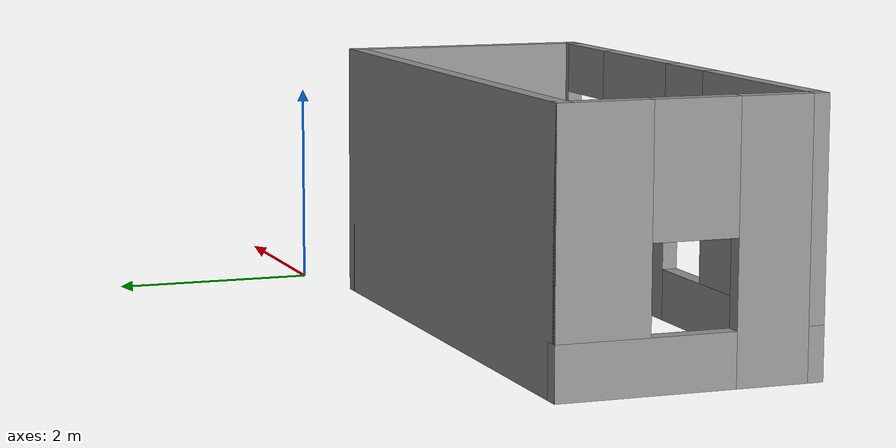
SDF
<?xml version='1.0'?>
<sdf version='1.7'>
  <model name='room'>
    <pose>-3.1975 -1.3625 0 0 -0 0</pose>
    <link name='Wall_0'>
      <pose>-0.4475 -1.2875 0 0 -0 3.14159</pose>
      <visual name='Wall_0_Visual_0'>
        <pose>-2.64095 0 1.25 0 -0 0</pose>
        <geometry>
          <box>
            <size>0.218093 0.15 2.5</size>
          </box>
        </geometry>
        <material>
          <script>
            <uri>file://media/materials/scripts/gazebo.material</uri>
            <name>Gazebo/Grey</name>
          </script>
          <ambient>1 1 1 1</ambient>
        </material>
        <meta>
          <layer>0</layer>
        </meta>
      </visual>
      <collision name='Wall_0_Collision_0'>
        <geometry>
          <box>
            <size>0.218093 0.15 2.5</size>
          </box>
        </geometry>
        <pose>-2.64095 0 1.25 0 -0 0</pose>
      </collision>
      <visual name='Wall_0_Visual_1'>
        <pose>-0.901157 0 1.25 0 -0 0</pose>
        <geometry>
          <box>
            <size>1.4615 0.15 2.5</size>
          </box>
        </geometry>
        <material>
          <script>
            <uri>file://media/materials/scripts/gazebo.material</uri>
            <name>Gazebo/Grey</name>
          </script>
          <ambient>1 1 1 1</ambient>
        </material>
        <meta>
          <layer>0</layer>
        </meta>
      </visual>
      <collision name='Wall_0_Collision_1'>
        <geometry>
          <box>
            <size>1.4615 0.15 2.5</size>
          </box>
        </geometry>
        <pose>-0.901157 0 1.25 0 -0 0</pose>
      </collision>
      <visual name='Wall_0_Visual_2'>
        <pose>1.2898 0 0.25 0 -0 0</pose>
        <geometry>
          <box>
            <size>2.92041 0.15 0.5</size>
          </box>
        </geometry>
        <material>
          <script>
            <uri>file://media/materials/scripts/gazebo.material</uri>
            <name>Gazebo/Grey</name>
          </script>
          <ambient>1 1 1 1</ambient>
        </material>
        <meta>
          <layer>0</layer>
        </meta>
      </visual>
      <collision name='Wall_0_Collision_2'>
        <geometry>
          <box>
            <size>2.92041 0.15 0.5</size>
          </box>
        </geometry>
        <pose>1.2898 0 0.25 0 -0 0</pose>
      </collision>
      <visual name='Wall_0_Visual_3'>
        <pose>1.6898 0 1.5 0 -0 0</pose>
        <geometry>
          <box>
            <size>2.12041 0.15 2</size>
          </box>
        </geometry>
        <material>
          <script>
            <uri>file://media/materials/scripts/gazebo.material</uri>
            <name>Gazebo/Grey</name>
          </script>
          <ambient>1 1 1 1</ambient>
        </material>
        <meta>
          <layer>0</layer>
        </meta>
      </visual>
      <collision name='Wall_0_Collision_3'>
        <geometry>
          <box>
            <size>2.12041 0.15 2</size>
          </box>
        </geometry>
        <pose>1.6898 0 1.5 0 -0 0</pose>
      </collision>
      <visual name='Wall_0_Visual_4'>
        <pose>0.229593 0 1.9 0 -0 0</pose>
        <geometry>
          <box>
            <size>0.8 0.15 1.2</size>
          </box>
        </geometry>
        <material>
          <script>
            <uri>file://media/materials/scripts/gazebo.material</uri>
            <name>Gazebo/Grey</name>
          </script>
          <ambient>1 1 1 1</ambient>
        </material>
        <meta>
          <layer>0</layer>
        </meta>
      </visual>
      <collision name='Wall_0_Collision_4'>
        <geometry>
          <box>
            <size>0.8 0.15 1.2</size>
          </box>
        </geometry>
        <pose>0.229593 0 1.9 0 -0 0</pose>
      </collision>
      <visual name='Wall_0_Visual_5'>
        <pose>-2.08191 0 2.25 0 -0 0</pose>
        <geometry>
          <box>
            <size>0.9 0.15 0.5</size>
          </box>
        </geometry>
        <material>
          <script>
            <uri>file://media/materials/scripts/gazebo.material</uri>
            <name>Gazebo/Grey</name>
          </script>
          <ambient>1 1 1 1</ambient>
        </material>
        <meta>
          <layer>0</layer>
        </meta>
      </visual>
      <collision name='Wall_0_Collision_5'>
        <geometry>
          <box>
            <size>0.9 0.15 0.5</size>
          </box>
        </geometry>
        <pose>-2.08191 0 2.25 0 -0 0</pose>
      </collision>
    </link>
    <link name='Wall_1'>
      <collision name='Wall_1_Collision'>
        <geometry>
          <box>
            <size>0.15 0.15 2.5</size>
          </box>
        </geometry>
        <pose>0 0 1.25 0 -0 0</pose>
      </collision>
      <visual name='Wall_1_Visual'>
        <pose>0 0 1.25 0 -0 0</pose>
        <geometry>
          <box>
            <size>0.15 0.15 2.5</size>
          </box>
        </geometry>
        <material>
          <script>
            <uri>file://media/materials/scripts/gazebo.material</uri>
            <name>Gazebo/Grey</name>
          </script>
          <ambient>1 1 1 1</ambient>
        </material>
        <meta>
          <layer>0</layer>
        </meta>
      </visual>
      <pose>-3.1225 -1.2875 0 0 -0 0</pose>
    </link>
    <link name='Wall_2'>
      <pose>-3.1225 -0.1125 0 0 -0 1.5708</pose>
      <visual name='Wall_2_Visual_0'>
        <pose>-0.835314 0 1.25 0 -0 0</pose>
        <geometry>
          <box>
            <size>0.829373 0.15 2.5</size>
          </box>
        </geometry>
        <material>
          <script>
            <uri>file://media/materials/scripts/gazebo.material</uri>
            <name>Gazebo/Grey</name>
          </script>
          <ambient>1 1 1 1</ambient>
        </material>
        <meta>
          <layer>0</layer>
        </meta>
      </visual>
      <collision name='Wall_2_Collision_0'>
        <geometry>
          <box>
            <size>0.829373 0.15 2.5</size>
          </box>
        </geometry>
        <pose>-0.835314 0 1.25 0 -0 0</pose>
      </collision>
      <visual name='Wall_2_Visual_1'>
        <pose>0.414686 0 0.25 0 -0 0</pose>
        <geometry>
          <box>
            <size>1.67063 0.15 0.5</size>
          </box>
        </geometry>
        <material>
          <script>
            <uri>file://media/materials/scripts/gazebo.material</uri>
            <name>Gazebo/Grey</name>
          </script>
          <ambient>1 1 1 1</ambient>
        </material>
        <meta>
          <layer>0</layer>
        </meta>
      </visual>
      <collision name='Wall_2_Collision_1'>
        <geometry>
          <box>
            <size>1.67063 0.15 0.5</size>
          </box>
        </geometry>
        <pose>0.414686 0 0.25 0 -0 0</pose>
      </collision>
      <visual name='Wall_2_Visual_2'>
        <pose>0.814686 0 1.5 0 -0 0</pose>
        <geometry>
          <box>
            <size>0.870627 0.15 2</size>
          </box>
        </geometry>
        <material>
          <script>
            <uri>file://media/materials/scripts/gazebo.material</uri>
            <name>Gazebo/Grey</name>
          </script>
          <ambient>1 1 1 1</ambient>
        </material>
        <meta>
          <layer>0</layer>
        </meta>
      </visual>
      <collision name='Wall_2_Collision_2'>
        <geometry>
          <box>
            <size>0.870627 0.15 2</size>
          </box>
        </geometry>
        <pose>0.814686 0 1.5 0 -0 0</pose>
      </collision>
      <visual name='Wall_2_Visual_3'>
        <pose>-0.020627 0 1.9 0 -0 0</pose>
        <geometry>
          <box>
            <size>0.8 0.15 1.2</size>
          </box>
        </geometry>
        <material>
          <script>
            <uri>file://media/materials/scripts/gazebo.material</uri>
            <name>Gazebo/Grey</name>
          </script>
          <ambient>1 1 1 1</ambient>
        </material>
        <meta>
          <layer>0</layer>
        </meta>
      </visual>
      <collision name='Wall_2_Collision_3'>
        <geometry>
          <box>
            <size>0.8 0.15 1.2</size>
          </box>
        </geometry>
        <pose>-0.020627 0 1.9 0 -0 0</pose>
      </collision>
    </link>
    <link name='Wall_3'>
      <collision name='Wall_3_Collision'>
        <geometry>
          <box>
            <size>0.15 0.15 2.5</size>
          </box>
        </geometry>
        <pose>0 0 1.25 0 -0 0</pose>
      </collision>
      <visual name='Wall_3_Visual'>
        <pose>0 0 1.25 0 -0 0</pose>
        <geometry>
          <box>
            <size>0.15 0.15 2.5</size>
          </box>
        </geometry>
        <material>
          <script>
            <uri>file://media/materials/scripts/gazebo.material</uri>
            <name>Gazebo/Grey</name>
          </script>
          <ambient>1 1 1 1</ambient>
        </material>
        <meta>
          <layer>0</layer>
        </meta>
      </visual>
      <pose>-3.1225 1.0625 0 0 -0 0</pose>
    </link>
    <link name='Wall_4'>
      <collision name='Wall_4_Collision'>
        <geometry>
          <box>
            <size>5.5 0.15 2.5</size>
          </box>
        </geometry>
        <pose>0 0 1.25 0 -0 0</pose>
      </collision>
      <visual name='Wall_4_Visual'>
        <pose>0 0 1.25 0 -0 0</pose>
        <geometry>
          <box>
            <size>5.5 0.15 2.5</size>
          </box>
        </geometry>
        <material>
          <script>
            <uri>file://media/materials/scripts/gazebo.material</uri>
            <name>Gazebo/Grey</name>
          </script>
          <ambient>1 1 1 1</ambient>
        </material>
        <meta>
          <layer>0</layer>
        </meta>
      </visual>
      <pose>-0.4475 1.0625 0 0 -0 0</pose>
    </link>
    <link name='Wall_5'>
      <collision name='Wall_5_Collision'>
        <geometry>
          <box>
            <size>2.5 0.15 2.5</size>
          </box>
        </geometry>
        <pose>0 0 1.25 0 -0 0</pose>
      </collision>
      <visual name='Wall_5_Visual'>
        <pose>0 0 1.25 0 -0 0</pose>
        <geometry>
          <box>
            <size>2.5 0.15 2.5</size>
          </box>
        </geometry>
        <material>
          <script>
            <uri>file://media/materials/scripts/gazebo.material</uri>
            <name>Gazebo/Grey</name>
          </script>
          <ambient>1 1 1 1</ambient>
        </material>
        <meta>
          <layer>0</layer>
        </meta>
      </visual>
      <pose>2.2275 -0.1125 0 0 -0 -1.5708</pose>
    </link>
    <static>1</static>
  </model>
</sdf>
